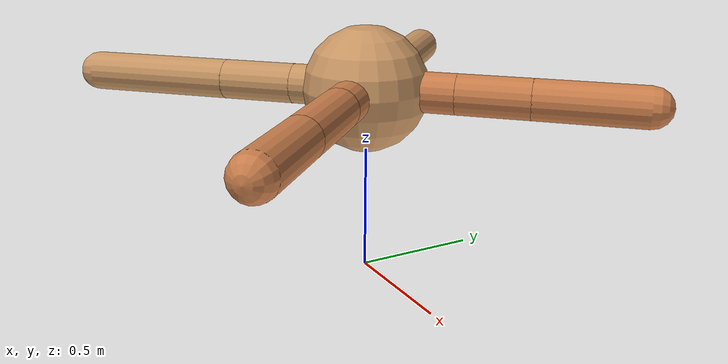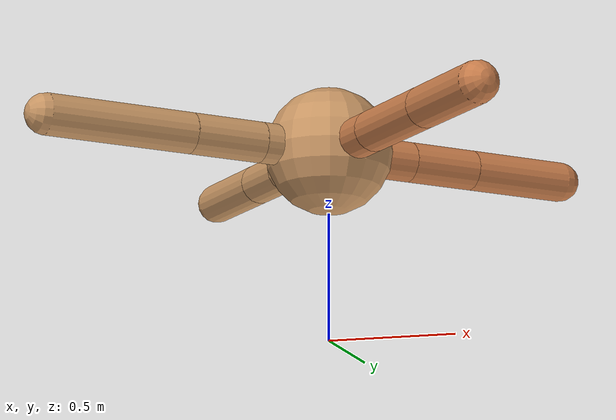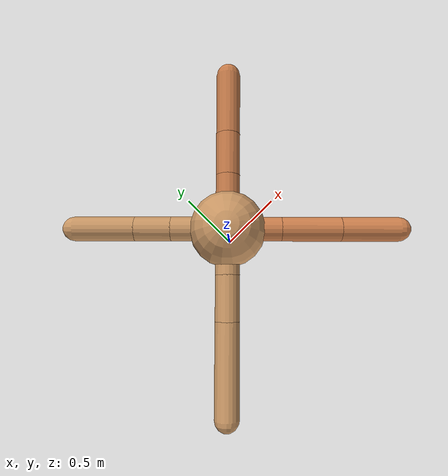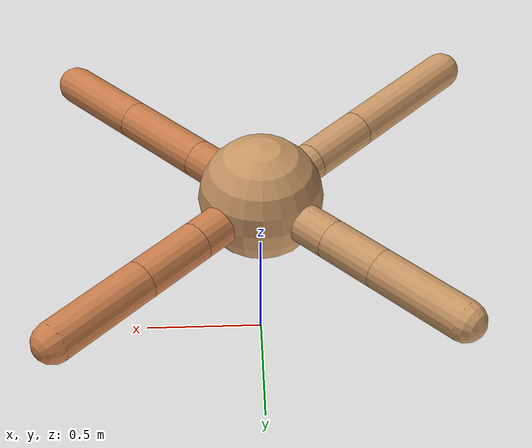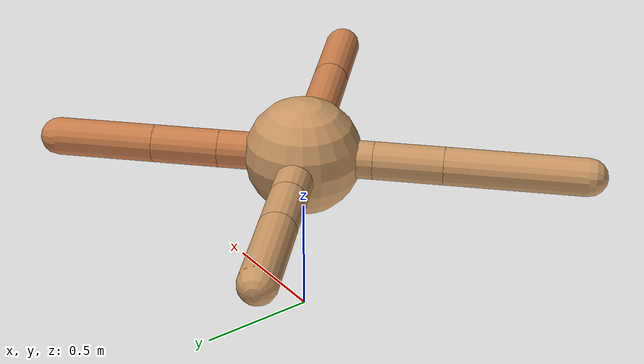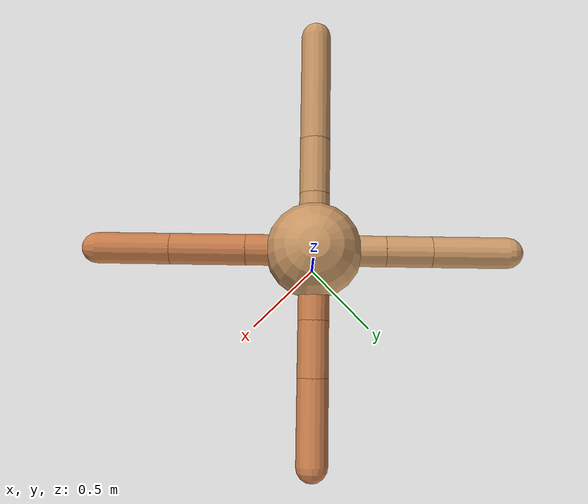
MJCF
<mujoco model="ant">
  <compiler angle="degree" coordinate="local" inertiafromgeom="true" />
  <option integrator="RK4" timestep="0.01" />
  <custom>
    <numeric data="0.0 0.0 0.55 1.0 0.0 0.0 0.0 0.0 1.0 0.0 -1.0 0.0 -1.0 0.0 1.0" name="init_qpos" />
  </custom>
  <default>
    <joint armature="1" damping="1" limited="true" />
    <geom conaffinity="0" condim="3" density="5.0" friction="1.5 0.1 0.1" margin="0.01" rgba="0.8 0.6 0.4 1" />
  </default>
  <worldbody>
    <body name="torso" pos="0 0 0.75">
      <geom name="torso_geom" pos="0 0 0" size="0.25" type="sphere" />

      <body name="front_left_leg" pos="0 0 0">
        <geom fromto="0.0 0.0 0.0 0.2544929936580935 0.2544929936580935 0.0" name="aux_1_geom" size="0.08" type="capsule" rgba=".8 .5 .3 1" />
        <body name="aux_1" pos="0.2544929936580935 0.2544929936580935 0.0">
          <joint axis="0 0 1" name="hip_1" pos="0.0 0.0 0.0" range="-40 40" type="hinge" />
          <geom fromto="0.0 0.0 0.0 0.2009091241137056 0.2009091241137056 0.0" name="left_leg_geom" size="0.08" type="capsule" rgba=".8 .5 .3 1" />
          <body pos="0.2009091241137056 0.2009091241137056 0.0" name="front_left_foot">
            <joint axis="-1 1 0" name="ankle_1" pos="0.0 0.0 0.0" range="30 100" type="hinge" />
            <geom fromto="0.0 0.0 0.0 0.29701427270171943 0.29701427270171943 0.0" name="left_ankle_geom" size="0.08" type="capsule" rgba=".8 .5 .3 1" />
          </body>
        </body>
      </body>
      <body name="front_right_leg" pos="0 0 0">
        <geom fromto="0.0 0.0 0.0 -0.2604549231277088 0.2604549231277088 0.0" name="aux_2_geom" size="0.08" type="capsule" />
        <body name="aux_2" pos="-0.2604549231277088 0.2604549231277088 0.0">
          <joint axis="0 0 1" name="hip_2" pos="0.0 0.0 0.0" range="-40 40" type="hinge" />
          <geom fromto="0.0 0.0 0.0 -0.16592294461773133 0.16592294461773133 0.0" name="right_leg_geom" size="0.08" type="capsule" />
          <body pos="-0.16592294461773133 0.16592294461773133 0.0" name="front_right_foot">
            <joint axis="1 1 0" name="ankle_2" pos="0.0 0.0 0.0" range="-100 -30" type="hinge" />
            <geom fromto="0.0 0.0 0.0 -0.2763274852807939 0.2763274852807939 0.0" name="right_ankle_geom" size="0.08" type="capsule" />
          </body>
        </body>
      </body>
      <body name="left_back_leg" pos="0 0 0">
        <geom fromto="0.0 0.0 0.0 -0.2110753575615812 -0.2110753575615812 0.0" name="aux_3_geom" size="0.08" type="capsule" />
        <body name="aux_3" pos="-0.2110753575615812 -0.2110753575615812 0.0">
          <joint axis="0 0 1" name="hip_3" pos="0.0 0.0 0.0" range="-40 40" type="hinge" />
          <geom fromto="0.0 0.0 0.0 -0.20891692015206456 -0.20891692015206456 0.0" name="back_leg_geom" size="0.08" type="capsule" />
          <body pos="-0.20891692015206456 -0.20891692015206456 0.0" name="left_back_foot">
            <joint axis="-1 1 0" name="ankle_3" pos="0.0 0.0 0.0" range="-100 -30" type="hinge" />
            <geom fromto="0.0 0.0 0.0 -0.4206656301184517 -0.4206656301184517 0.0" name="third_ankle_geom" size="0.08" type="capsule" />
          </body>
        </body>
      </body>
      <body name="right_back_leg" pos="0 0 0">
        <geom fromto="0.0 0.0 0.0 0.2480997608224343 -0.2480997608224343 0.0" name="aux_4_geom" size="0.08" type="capsule" rgba=".8 .5 .3 1" />
        <body name="aux_4" pos="0.2480997608224343 -0.2480997608224343 0.0">
          <joint axis="0 0 1" name="hip_4" pos="0.0 0.0 0.0" range="-40 40" type="hinge" />
          <geom fromto="0.0 0.0 0.0 0.2734187407978066 -0.2734187407978066 0.0" name="rightback_leg_geom" size="0.08" type="capsule" rgba=".8 .5 .3 1" />
          <body pos="0.2734187407978066 -0.2734187407978066 0.0" name="right_back_foot">
            <joint axis="1 1 0" name="ankle_4" pos="0.0 0.0 0.0" range="30 100" type="hinge" />
            <geom fromto="0.0 0.0 0.0 0.26616513421925675 -0.26616513421925675 0.0" name="fourth_ankle_geom" size="0.08" type="capsule" rgba=".8 .5 .3 1" />
          </body>
        </body>
      </body>
    </body>
  </worldbody>
  <actuator>
    <motor ctrllimited="true" ctrlrange="-1.0 1.0" joint="hip_4" gear="150" />
    <motor ctrllimited="true" ctrlrange="-1.0 1.0" joint="ankle_4" gear="150" />
    <motor ctrllimited="true" ctrlrange="-1.0 1.0" joint="hip_1" gear="150" />
    <motor ctrllimited="true" ctrlrange="-1.0 1.0" joint="ankle_1" gear="150" />
    <motor ctrllimited="true" ctrlrange="-1.0 1.0" joint="hip_2" gear="150" />
    <motor ctrllimited="true" ctrlrange="-1.0 1.0" joint="ankle_2" gear="150" />
    <motor ctrllimited="true" ctrlrange="-1.0 1.0" joint="hip_3" gear="150" />
    <motor ctrllimited="true" ctrlrange="-1.0 1.0" joint="ankle_3" gear="150" />
  </actuator>
</mujoco>
